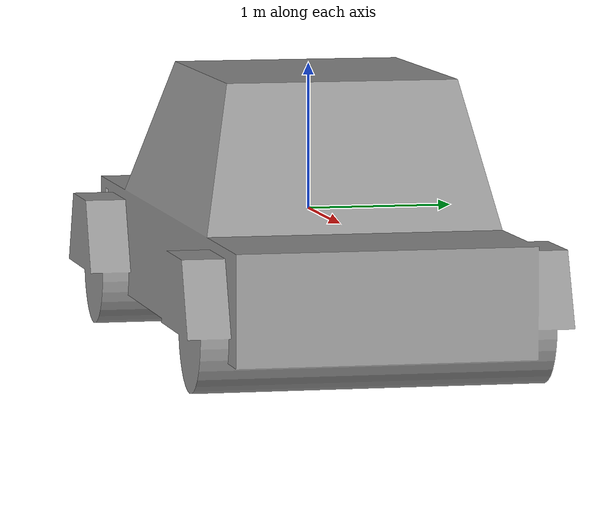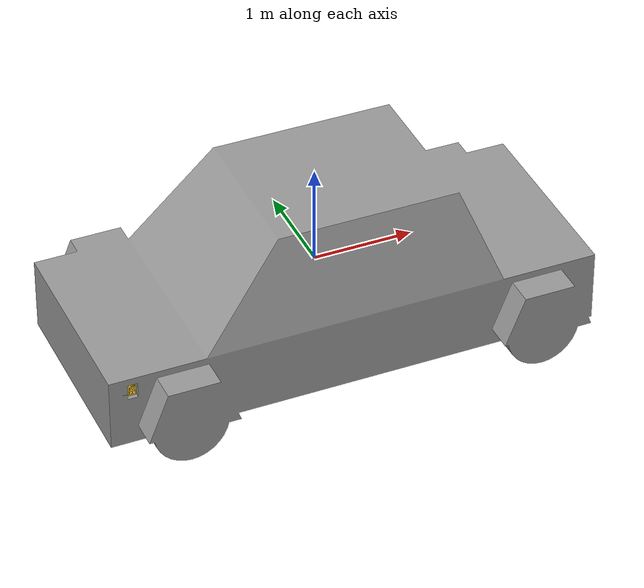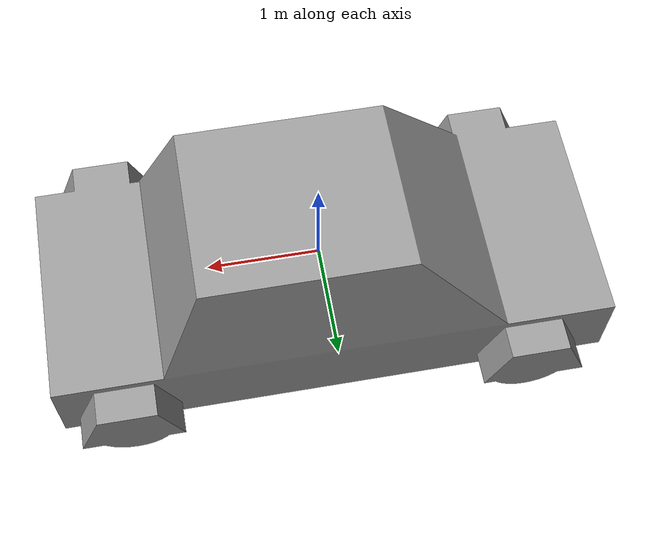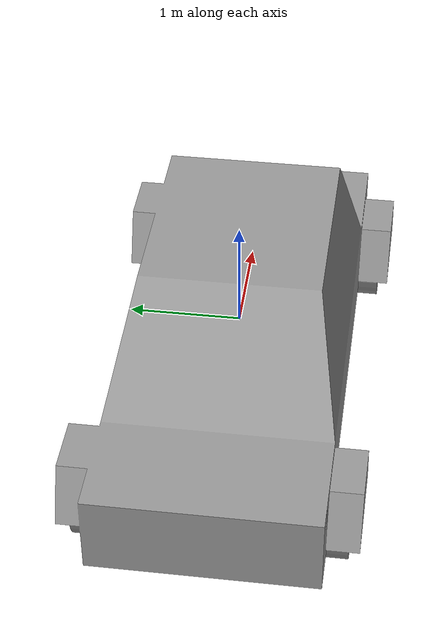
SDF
<?xml version="1.0" ?>
<sdf version="1.7">
  <model name="electric_car">
    <static>false</static>
    <link name="body">
      <visual name="visual_body">
        <pose>0 0 -1 0 0 1.57</pose>
        <geometry>
          <mesh>
            <uri>model://tram_sac_VF/meshes/newcar.stl</uri>
            <scale>0.001 0.001 0.0011</scale>
          </mesh>
        </geometry>
        <material>
          <script>
            <uri>file://media/materials/scripts/gazebo.material</uri>
            <name>Gazebo/Gray</name>
          </script>
        </material>
      </visual>

      <collision name="collision_body">
        <pose>0 0 0.0 0 0 0</pose>
        <geometry>
          <box>
            <size>4.2 2 1.8</size>
          </box>
        </geometry>
      </collision>

      <visual name="visual_cong_sac">
        <pose>0 0 -0.92 0 0 1.57</pose>
        <geometry>
          <mesh>
            <uri>model://tram_sac_VF/meshes/cong_sac1.stl</uri>
            <scale>0.001 0.001 0.001</scale>
          </mesh>
        </geometry>
        <material>
          <script>
            <uri>file://media/materials/scripts/gazebo.material</uri>
            <name>Gazebo/Gold</name>
          </script>
        </material>
      </visual>

      <collision name="collision_cong_sac">
        <pose>0 0 -0.92 0 0 1.57</pose>
        <geometry>
          <mesh>
            <uri>model://tram_sac_VF/meshes/cong_sac1.stl</uri>
            <scale>0.001 0.001 0.001</scale>
          </mesh>
        </geometry>
        <max_contacts>10</max_contacts>
        <surface>
          <friction>
            <ode>
              <mu>1.0</mu>
              <mu2>1.0</mu2>
            </ode>
          </friction>
        </surface>
      </collision>
    </link>

  </model>
</sdf>
